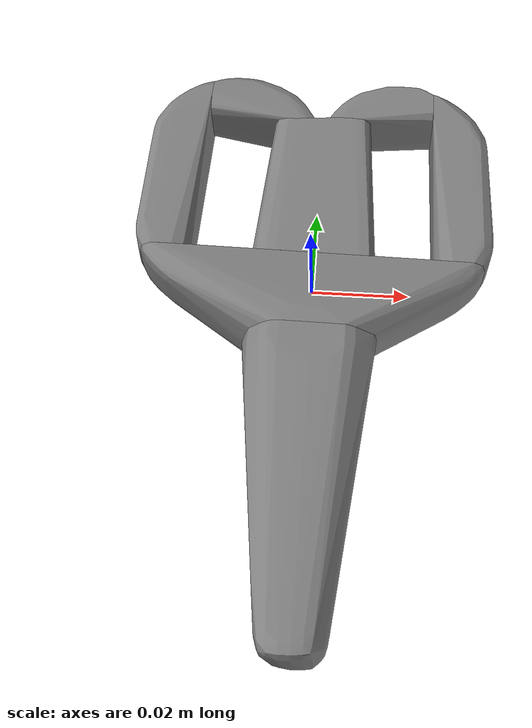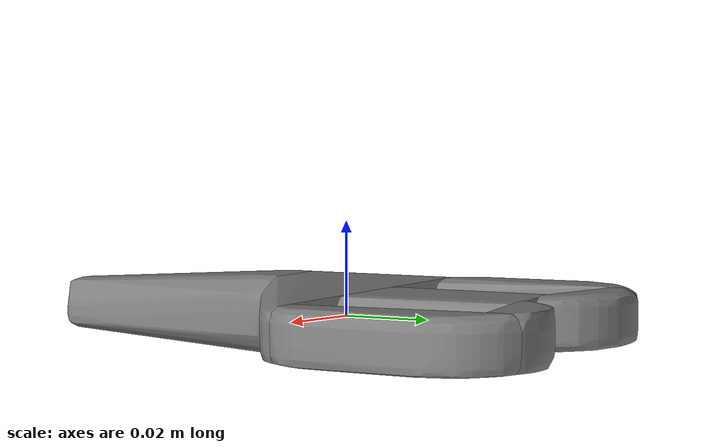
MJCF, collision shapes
<mujoco model="scissors">
  <compiler meshdir="."/>

  <asset>
    <mesh name="scissors" file="scissors.stl"/>
    <mesh name="scissors_collision_hull_000" file="scissors_collision_hull_000.stl"/>
    <mesh name="scissors_collision_hull_001" file="scissors_collision_hull_001.stl"/>
    <mesh name="scissors_collision_hull_002" file="scissors_collision_hull_002.stl"/>
    <mesh name="scissors_collision_hull_003" file="scissors_collision_hull_003.stl"/>
    <mesh name="scissors_collision_hull_004" file="scissors_collision_hull_004.stl"/>
    <mesh name="scissors_collision_hull_005" file="scissors_collision_hull_005.stl"/>
    <mesh name="scissors_collision_hull_006" file="scissors_collision_hull_006.stl"/>
  </asset>

  <worldbody>
    <body name="object">
      <freejoint name="object_joint"/>
      <geom name="object_visual" type="mesh" mesh="scissors"
            contype="0" conaffinity="0" group="2" rgba="0.9 0.9 0.8 1" mass="0"/>
      <geom name="scissors_collision_hull_000_collision" type="mesh" mesh="scissors_collision_hull_000"
            mass="0.0071" condim="6" friction="1.0 0.002 0.002" priority="1"/>
      <geom name="scissors_collision_hull_001_collision" type="mesh" mesh="scissors_collision_hull_001"
            mass="0.0071" condim="6" friction="1.0 0.002 0.002" priority="1"/>
      <geom name="scissors_collision_hull_002_collision" type="mesh" mesh="scissors_collision_hull_002"
            mass="0.0071" condim="6" friction="1.0 0.002 0.002" priority="1"/>
      <geom name="scissors_collision_hull_003_collision" type="mesh" mesh="scissors_collision_hull_003"
            mass="0.0071" condim="6" friction="1.0 0.002 0.002" priority="1"/>
      <geom name="scissors_collision_hull_004_collision" type="mesh" mesh="scissors_collision_hull_004"
            mass="0.0071" condim="6" friction="1.0 0.002 0.002" priority="1"/>
      <geom name="scissors_collision_hull_005_collision" type="mesh" mesh="scissors_collision_hull_005"
            mass="0.0071" condim="6" friction="1.0 0.002 0.002" priority="1"/>
      <geom name="scissors_collision_hull_006_collision" type="mesh" mesh="scissors_collision_hull_006"
            mass="0.0071" condim="6" friction="1.0 0.002 0.002" priority="1"/>
    </body>
  </worldbody>
</mujoco>
